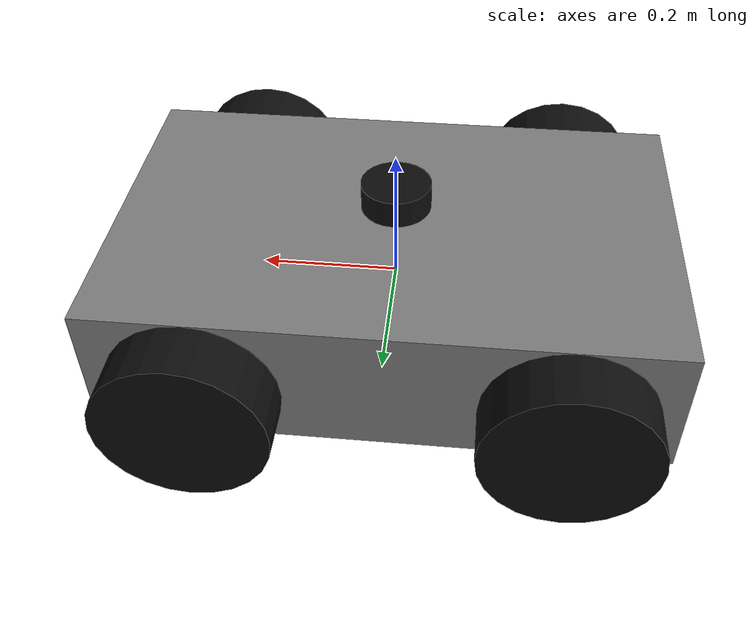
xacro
<?xml version="1.0"?>
<robot name="ugv" xmlns:xacro="http://www.ros.org/wiki/xacro">

    <!-- Robot dimensions (0.8m long x 0.66m wide with wheels)     -->
    <xacro:property name="body_length" value="0.8"/>
    <xacro:property name="body_width" value="0.5"/>
    <xacro:property name="body_height" value="0.2"/>

    <xacro:property name="wheel_radius" value="0.12"/>
    <xacro:property name="wheel_width" value="0.08"/>

    <xacro:property name="wheel_x" value="0.25"/>
    <xacro:property name="wheel_y" value="0.29"/>
    <xacro:property name="wheel_z" value="-0.02"/>

    <!-- Materials -->
    <material name="grey">
        <color rgba="0.5 0.5 0.5 1.0"/>
    </material>
    <material name="black">
        <color rgba="0.05 0.05 0.05 1.0"/>
    </material>

    <!-- Base Chassis                                              -->
    <link name="base_link">
        <visual>
            <origin xyz="0 0 0" rpy="0 0 0"/>
            <geometry>
                <box size="${body_length} ${body_width} ${body_height}"/>
            </geometry>
            <material name="grey"/>
        </visual>

        <collision name="base_link_collision">
            <origin xyz="0 0 0" rpy="0 0 0"/>
            <geometry>
                <box size="${body_length} ${body_width} ${body_height}"/>
            </geometry>
        </collision>

        <inertial>
            <origin xyz="0 0 0" rpy="0 0 0"/>
            <mass value="10.0"/>
            <inertia ixx="0.2417" ixy="0.0" ixz="0.0"
                     iyy="0.5417" iyz="0.0" izz="0.7083"/>
        </inertial>
    </link>

    <!-- Reusable Wheel Macro (Avoids repeating 4 identical blocks)-->
    <xacro:macro name="ugv_wheel" params="prefix x_pos y_pos">
        <link name="${prefix}_wheel">
            <visual>
                <origin xyz="0 0 0" rpy="1.5708 0 0"/>
                <geometry>
                    <cylinder radius="${wheel_radius}" length="${wheel_width}"/>
                </geometry>
                <material name="black"/>
            </visual>
            <collision>
                <origin xyz="0 0 0" rpy="1.5708 0 0"/>
                <geometry>
                    <cylinder radius="${wheel_radius}" length="${wheel_width}"/>
                </geometry>
            </collision>
            <inertial>
                <origin xyz="0 0 0" rpy="0 0 0"/>
                <mass value="1.0"/>
                <inertia ixx="0.00413" ixy="0.0" ixz="0.0"
                         iyy="0.0072" iyz="0.0" izz="0.00413"/>
            </inertial>
        </link>

        <joint name="${prefix}_wheel_joint" type="continuous">
            <parent link="base_link"/>
            <child link="${prefix}_wheel"/>
            <origin xyz="${x_pos} ${y_pos} ${wheel_z}" rpy="0 0 0"/>
            <axis xyz="0 1 0"/>
        </joint>

        <!-- Skid-steer friction high forward grip (mu1), low lateral drag (mu2) -->
        <gazebo reference="${prefix}_wheel">
            <mu1>1.0</mu1>
            <mu2>0.15</mu2>
            <kp>1000000.0</kp>
            <kd>100.0</kd>
            <material>Gazebo/Black</material>
        </gazebo>
    </xacro:macro>

    <!-- Instantiate all 4 wheels -->
    <xacro:ugv_wheel prefix="front_left"  x_pos="${wheel_x}"  y_pos="${wheel_y}"/>
    <xacro:ugv_wheel prefix="front_right" x_pos="${wheel_x}"  y_pos="-${wheel_y}"/>
    <xacro:ugv_wheel prefix="rear_left"   x_pos="-${wheel_x}" y_pos="${wheel_y}"/>
    <xacro:ugv_wheel prefix="rear_right"  x_pos="-${wheel_x}" y_pos="-${wheel_y}"/>

    <!-- LiDAR Sensor Link (Mounted at z = 0.14m above base_link)  -->
    <link name="lidar_link">
        <visual>
            <geometry>
                <cylinder radius="0.05" length="0.04"/>
            </geometry>
            <material name="black"/>
        </visual>
        <inertial>
            <mass value="0.1"/>
            <inertia ixx="0.0001" ixy="0" ixz="0"
                     iyy="0.0001" iyz="0" izz="0.0001"/>
        </inertial>
    </link>

    <joint name="lidar_joint" type="fixed">
        <parent link="base_link"/>
        <child link="lidar_link"/>
        <origin xyz="0 0 0.14" rpy="0 0 0"/>
    </joint>

    <!-- Gazebo 360 LiDAR Plugin (Updated to 30 Hz for fast RL steps) -->
    <gazebo reference="lidar_link">
        <sensor name="ugv_lidar" type="ray">
            <pose>0 0 0 0 0 0</pose>
            <visualize>true</visualize>
            <update_rate>30</update_rate>
            <ray>
                <scan>
                    <horizontal>
                        <samples>360</samples>
                        <resolution>1</resolution>
                        <min_angle>-3.14159</min_angle>
                        <max_angle>3.14159</max_angle>
                    </horizontal>
                </scan>
                <range>
                    <min>0.12</min>
                    <max>8.0</max>
                    <resolution>0.01</resolution>
                </range>
            </ray>
            <plugin name="ugv_lidar_ros" filename="libgazebo_ros_ray_sensor.so">
                <ros>
                    <remapping>~/out:=scan</remapping>
                </ros>
                <output_type>sensor_msgs/LaserScan</output_type>
                <frame_name>lidar_link</frame_name>
            </plugin>
        </sensor>
    </gazebo>

    <!-- Single Chassis Contact Sensor (No wheel ground-contact spam) -->
    <gazebo reference="base_link">
        <material>Gazebo/Grey</material>
        <sensor name="ugv_contact_sensor" type="contact">
            <always_on>true</always_on>
            <update_rate>50</update_rate>
            <contact>
                <collision>base_link_collision</collision>
            </contact>
            <plugin name="ugv_bumper_ros" filename="libgazebo_ros_bumper.so">
                <ros>
                    <namespace>/ugv</namespace>
                    <remapping>bumper_states:=contacts</remapping>
                </ros>
                <frame_name>base_link</frame_name>
            </plugin>
        </sensor>
    </gazebo>

    <!-- ROS 2 Control                                             -->
    <ros2_control name="GazeboSystem" type="system">
        <hardware>
            <plugin>gazebo_ros2_control/GazeboSystem</plugin>
        </hardware>

        <joint name="front_left_wheel_joint">
            <command_interface name="velocity">
                <param name="min">-10</param>
                <param name="max">10</param>
            </command_interface>
            <state_interface name="position"/>
            <state_interface name="velocity"/>
        </joint>

        <joint name="rear_left_wheel_joint">
            <command_interface name="velocity">
                <param name="min">-10</param>
                <param name="max">10</param>
            </command_interface>
            <state_interface name="position"/>
            <state_interface name="velocity"/>
        </joint>

        <joint name="front_right_wheel_joint">
            <command_interface name="velocity">
                <param name="min">-10</param>
                <param name="max">10</param>
            </command_interface>
            <state_interface name="position"/>
            <state_interface name="velocity"/>
        </joint>

        <joint name="rear_right_wheel_joint">
            <command_interface name="velocity">
                <param name="min">-10</param>
                <param name="max">10</param>
            </command_interface>
            <state_interface name="position"/>
            <state_interface name="velocity"/>
        </joint>
    </ros2_control>

    <gazebo>
        <plugin filename="libgazebo_ros2_control.so" name="gazebo_ros2_control">
            <parameters>$(find ugv)/config/controllers.yaml</parameters>
        </plugin>
    </gazebo>

</robot>
